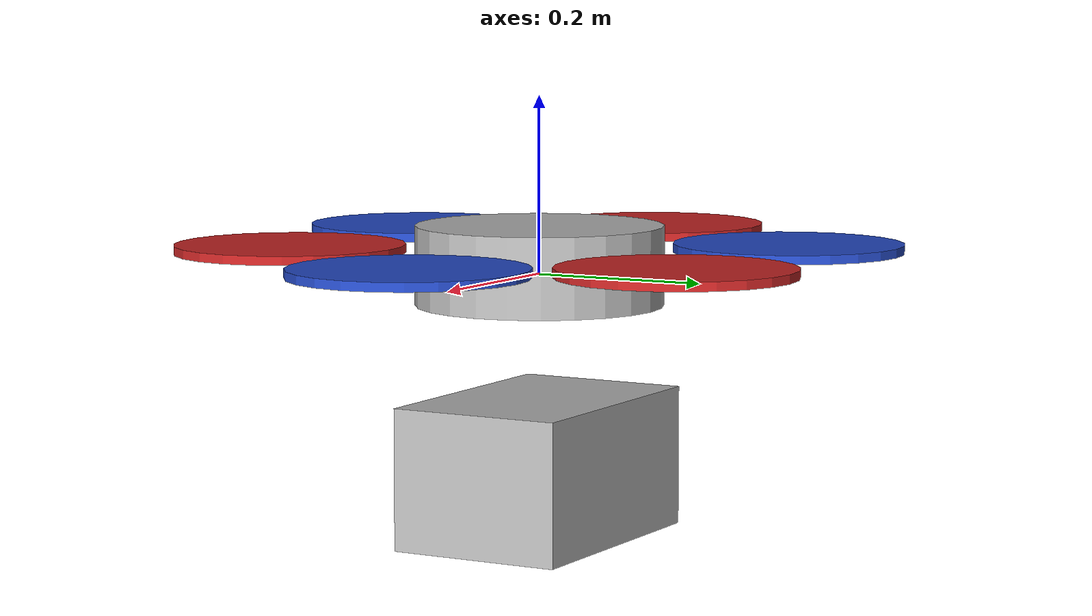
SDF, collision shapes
<sdf version='1.6'>
  <model name='wasp'>
    <link name='base_link'>
      <pose frame=''>0 0 0 0 -0 0</pose>
      <inertial>
        <pose frame=''>0.001154 0.000996 -0.066564 0 -0 0</pose>
        <mass>1.4221</mass>
        <inertia>
          <ixx>0.0305898</ixx>
          <ixy>1.33301e-05</ixy>
          <ixz>-0.000132934</ixz>
          <iyy>0.0326214</iyy>
          <iyz>4.8627e-05</iyz>
          <izz>0.00514132</izz>
        </inertia>
      </inertial>
      <collision name='base_link_fixed_joint_lump__rollcage_collision'>
        <pose frame=''>0 0 0.01 0 -0 0</pose>
        <geometry>
          <cylinder>
            <length>0.09</length>
            <radius>0.14</radius>
          </cylinder>
        </geometry>
      </collision>
      <collision name='base_link_fixed_joint_lump__lander_collision_1'>
        <pose frame=''>0 0 -0.22 0 -0 0</pose>
        <geometry>
          <box>
            <size>0.3 0.2 0.16</size>
          </box>
        </geometry>
      </collision>
      <visual name='base_link_visual'>
        <pose frame=''>0 0 0 0 -0 0</pose>
        <geometry>
          <mesh>
            <scale>1 1 1</scale>
            <uri>model://wasp_gazebo/meshes/WASP_CORE.dae</uri>
          </mesh>
        </geometry>
        <material>
          <script>
            <uri>__default__</uri>
            <name>__default__</name>
          </script>
        </material>
      </visual>
      <visual name='base_link_visual_1'>
        <pose frame=''>0 0 0 0 -0 0</pose>
        <geometry>
          <mesh>
            <scale>1 1 1</scale>
            <uri>model://wasp_gazebo/meshes/WASP_TOP.dae</uri>
          </mesh>
        </geometry>
        <material>
          <script>
            <uri>__default__</uri>
            <name>__default__</name>
          </script>
        </material>
      </visual>
      <visual name='base_link_visual_2'>
        <pose frame=''>0 0 -0.002 0 -0 0</pose>
        <geometry>
          <mesh>
            <scale>1 1 1</scale>
            <uri>model://wasp_gazebo/meshes/WASP_CAGE.dae</uri>
          </mesh>
        </geometry>
        <material>
          <script>
            <uri>__default__</uri>
            <name>__default__</name>
          </script>
        </material>
      </visual>
      <visual name='base_link_visual_3'>
        <pose frame=''>0 0 -0.14 0 -0 0</pose>
        <geometry>
          <mesh>
            <scale>1 1 1</scale>
            <uri>model://wasp_gazebo/meshes/WASP_EXTRUDER_MOUNT.dae</uri>
          </mesh>
        </geometry>
        <material>
          <script>
            <uri>__default__</uri>
            <name>__default__</name>
          </script>
        </material>
      </visual>
      <visual name='base_link_fixed_joint_lump__arm_0_visual_4'>
        <pose frame=''>-0.075 0 -0.0062 0 -0 -1.5708</pose>
        <geometry>
          <mesh>
            <scale>1 1 1</scale>
            <uri>model://wasp_gazebo/meshes/WASP_ARM.dae</uri>
          </mesh>
        </geometry>
      </visual>
      <visual name='base_link_fixed_joint_lump__motor_0_visual_5'>
        <pose frame=''>-0.2794 0 -0.0062 0 -0 0</pose>
        <geometry>
          <mesh>
            <scale>1 1 1</scale>
            <uri>model://wasp_gazebo/meshes/WASP_MOTOR.dae</uri>
          </mesh>
        </geometry>
      </visual>
      <visual name='base_link_fixed_joint_lump__arm_1_visual_6'>
        <pose frame=''>0.075 0 -0.0062 0 -0 1.5708</pose>
        <geometry>
          <mesh>
            <scale>1 1 1</scale>
            <uri>model://wasp_gazebo/meshes/WASP_ARM.dae</uri>
          </mesh>
        </geometry>
      </visual>
      <visual name='base_link_fixed_joint_lump__motor_1_visual_7'>
        <pose frame=''>0.2794 0 -0.0062 0 -0 0</pose>
        <geometry>
          <mesh>
            <scale>1 1 1</scale>
            <uri>model://wasp_gazebo/meshes/WASP_MOTOR.dae</uri>
          </mesh>
        </geometry>
      </visual>
      <visual name='base_link_fixed_joint_lump__arm_2_visual_8'>
        <pose frame=''>0.0375 -0.064952 -0.0062 0 -0 0.523599</pose>
        <geometry>
          <mesh>
            <scale>1 1 1</scale>
            <uri>model://wasp_gazebo/meshes/WASP_ARM.dae</uri>
          </mesh>
        </geometry>
      </visual>
      <visual name='base_link_fixed_joint_lump__motor_2_visual_9'>
        <pose frame=''>0.1397 -0.241967 -0.0062 0 -0 0</pose>
        <geometry>
          <mesh>
            <scale>1 1 1</scale>
            <uri>model://wasp_gazebo/meshes/WASP_MOTOR.dae</uri>
          </mesh>
        </geometry>
      </visual>
      <visual name='base_link_fixed_joint_lump__arm_3_visual_10'>
        <pose frame=''>-0.0375 0.064952 -0.0062 0 -0 -2.61799</pose>
        <geometry>
          <mesh>
            <scale>1 1 1</scale>
            <uri>model://wasp_gazebo/meshes/WASP_ARM.dae</uri>
          </mesh>
        </geometry>
      </visual>
      <visual name='base_link_fixed_joint_lump__motor_3_visual_11'>
        <pose frame=''>-0.1397 0.241967 -0.0062 0 -0 0</pose>
        <geometry>
          <mesh>
            <scale>1 1 1</scale>
            <uri>model://wasp_gazebo/meshes/WASP_MOTOR.dae</uri>
          </mesh>
        </geometry>
      </visual>
      <visual name='base_link_fixed_joint_lump__arm_4_visual_12'>
        <pose frame=''>-0.0375 -0.064952 -0.0062 0 -0 -0.523599</pose>
        <geometry>
          <mesh>
            <scale>1 1 1</scale>
            <uri>model://wasp_gazebo/meshes/WASP_ARM.dae</uri>
          </mesh>
        </geometry>
      </visual>
      <visual name='base_link_fixed_joint_lump__motor_4_visual_13'>
        <pose frame=''>-0.1397 -0.241967 -0.0062 0 -0 0</pose>
        <geometry>
          <mesh>
            <scale>1 1 1</scale>
            <uri>model://wasp_gazebo/meshes/WASP_MOTOR.dae</uri>
          </mesh>
        </geometry>
      </visual>
      <visual name='base_link_fixed_joint_lump__arm_5_visual_14'>
        <pose frame=''>0.0375 0.064952 -0.0062 0 -0 2.61799</pose>
        <geometry>
          <mesh>
            <scale>1 1 1</scale>
            <uri>model://wasp_gazebo/meshes/WASP_ARM.dae</uri>
          </mesh>
        </geometry>
      </visual>
      <visual name='base_link_fixed_joint_lump__motor_5_visual_15'>
        <pose frame=''>0.1397 0.241967 -0.0062 0 -0 0</pose>
        <geometry>
          <mesh>
            <scale>1 1 1</scale>
            <uri>model://wasp_gazebo/meshes/WASP_MOTOR.dae</uri>
          </mesh>
        </geometry>
      </visual>
      <visual name='base_link_fixed_joint_lump__leg_0_visual_16'>
        <pose frame=''>0.063755 0.037567 -0.206 0 -0 2.10327</pose>
        <geometry>
          <mesh>
            <scale>1 1 1</scale>
            <uri>model://wasp_gazebo/meshes/WASP_LEG.dae</uri>
          </mesh>
        </geometry>
      </visual>
      <visual name='base_link_fixed_joint_lump__leg_1_visual_17'>
        <pose frame=''>0.063755 -0.037567 -0.206 0 -0 1.03832</pose>
        <geometry>
          <mesh>
            <scale>1 1 1</scale>
            <uri>model://wasp_gazebo/meshes/WASP_LEG.dae</uri>
          </mesh>
        </geometry>
      </visual>
      <visual name='base_link_fixed_joint_lump__leg_2_visual_18'>
        <pose frame=''>-0.063755 -0.037567 -0.206 0 -0 -1.03832</pose>
        <geometry>
          <mesh>
            <scale>1 1 1</scale>
            <uri>model://wasp_gazebo/meshes/WASP_LEG.dae</uri>
          </mesh>
        </geometry>
      </visual>
      <visual name='base_link_fixed_joint_lump__leg_3_visual_19'>
        <pose frame=''>-0.063755 0.037567 -0.206 0 -0 -2.10327</pose>
        <geometry>
          <mesh>
            <scale>1 1 1</scale>
            <uri>model://wasp_gazebo/meshes/WASP_LEG.dae</uri>
          </mesh>
        </geometry>
      </visual>
      <visual name='base_link_fixed_joint_lump__cannister_0_visual_20'>
        <pose frame=''>0.08 -0.076 -0.112 -1.5708 0 0</pose>
        <geometry>
          <mesh>
            <scale>1 1 1</scale>
            <uri>model://wasp_gazebo/meshes/WASP_CANNISTER.dae</uri>
          </mesh>
        </geometry>
      </visual>
      <visual name='base_link_fixed_joint_lump__cannister_1_visual_21'>
        <pose frame=''>-0.08 -0.076 -0.112 -1.5708 0 0</pose>
        <geometry>
          <mesh>
            <scale>1 1 1</scale>
            <uri>model://wasp_gazebo/meshes/WASP_CANNISTER.dae</uri>
          </mesh>
        </geometry>
      </visual>
      <visual name='base_link_fixed_joint_lump__nozzle_link_visual_22'>
        <pose frame=''>-0.059 0.023 -0.286 0 -0 1.5708</pose>
        <geometry>
          <mesh>
            <scale>1 1 1</scale>
            <uri>model://wasp_gazebo/meshes/WASP_NOZZLE.dae</uri>
          </mesh>
        </geometry>
        <pose frame=''>0 0 -0.05 0 -0 0</pose>
        <geometry>
          <sphere>
            <radius>0.01</radius>
          </sphere>
        </geometry>
        <material>
          <script>
            <name>Gazebo/White</name>
            <uri>file://media/materials/scripts/gazebo.material</uri>
          </script>
        </material>
      </visual>
      <velocity_decay/>
      <self_collide>0</self_collide>
      <gravity>1</gravity>
      <velocity_decay/>
    </link>
    <link name='rotor_0'>
      <pose frame=''>-0.2794 0 0.029 0 -0 0</pose>
      <inertial>
        <pose frame=''>0 0 0 0 -0 0</pose>
        <mass>0.025</mass>
        <inertia>
          <ixx>9.75e-06</ixx>
          <ixy>0</ixy>
          <ixz>0</ixz>
          <iyy>0.0001667</iyy>
          <iyz>0</iyz>
          <izz>0.0001667</izz>
        </inertia>
      </inertial>
      <collision name='rotor_0_collision'>
        <pose frame=''>0 0 0 0 -0 0</pose>
        <geometry>
          <cylinder>
            <length>0.01</length>
            <radius>0.13</radius>
          </cylinder>
        </geometry>
        <surface>
          <contact>
            <ode/>
          </contact>
          <friction>
            <ode/>
          </friction>
        </surface>
      </collision>
      <visual name='rotor_0_visual'>
        <pose frame=''>0 0 0 0 -0 0</pose>
        <geometry>
          <mesh>
            <scale>1 1 1</scale>
            <uri>model://wasp_gazebo/meshes/WASP_PROP_CCW.dae</uri>
          </mesh>
        </geometry>
        <material>
          <script>
            <name>Gazebo/Red</name>
            <uri>file://media/materials/scripts/gazebo.material</uri>
          </script>
        </material>
      </visual>
      <gravity>1</gravity>
      <velocity_decay/>
    </link>
    <joint name='rotor_0_joint' type='revolute'>
      <child>rotor_0</child>
      <parent>base_link</parent>
      <axis>
        <xyz>0 0 1</xyz>
        <limit>
          <lower>-1e+16</lower>
          <upper>1e+16</upper>
        </limit>
        <dynamics>
          <damping>0.004</damping>
          <friction>0</friction>
          <spring_reference>0</spring_reference>
          <spring_stiffness>0</spring_stiffness>
        </dynamics>
        <use_parent_model_frame>0</use_parent_model_frame>
      </axis>
    </joint>
    <link name='rotor_1'>
      <pose frame=''>0.2794 0 0.029 0 -0 0</pose>
      <inertial>
        <pose frame=''>0 0 0 0 -0 0</pose>
        <mass>0.025</mass>
        <inertia>
          <ixx>9.75e-06</ixx>
          <ixy>0</ixy>
          <ixz>0</ixz>
          <iyy>0.0001667</iyy>
          <iyz>0</iyz>
          <izz>0.0001667</izz>
        </inertia>
      </inertial>
      <collision name='rotor_1_collision'>
        <pose frame=''>0 0 0 0 -0 0</pose>
        <geometry>
          <cylinder>
            <length>0.01</length>
            <radius>0.13</radius>
          </cylinder>
        </geometry>
        <surface>
          <contact>
            <ode/>
          </contact>
          <friction>
            <ode/>
          </friction>
        </surface>
      </collision>
      <visual name='rotor_1_visual'>
        <pose frame=''>0 0 0 0 -0 0</pose>
        <geometry>
          <mesh>
            <scale>1 1 1</scale>
            <uri>model://wasp_gazebo/meshes/WASP_PROP_CW.dae</uri>
          </mesh>
        </geometry>
        <material>
          <script>
            <name>Gazebo/Blue</name>
            <uri>file://media/materials/scripts/gazebo.material</uri>
          </script>
        </material>
      </visual>
      <gravity>1</gravity>
      <velocity_decay/>
    </link>
    <joint name='rotor_1_joint' type='revolute'>
      <child>rotor_1</child>
      <parent>base_link</parent>
      <axis>
        <xyz>0 0 1</xyz>
        <limit>
          <lower>-1e+16</lower>
          <upper>1e+16</upper>
        </limit>
        <dynamics>
          <damping>0.004</damping>
          <friction>0</friction>
          <spring_reference>0</spring_reference>
          <spring_stiffness>0</spring_stiffness>
        </dynamics>
        <use_parent_model_frame>0</use_parent_model_frame>
      </axis>
    </joint>
    <link name='rotor_2'>
      <pose frame=''>0.1397 -0.241967 0.029 0 -0 0</pose>
      <inertial>
        <pose frame=''>0 0 0 0 -0 0</pose>
        <mass>0.025</mass>
        <inertia>
          <ixx>9.75e-06</ixx>
          <ixy>0</ixy>
          <ixz>0</ixz>
          <iyy>0.0001667</iyy>
          <iyz>0</iyz>
          <izz>0.0001667</izz>
        </inertia>
      </inertial>
      <collision name='rotor_2_collision'>
        <pose frame=''>0 0 0 0 -0 0</pose>
        <geometry>
          <cylinder>
            <length>0.01</length>
            <radius>0.13</radius>
          </cylinder>
        </geometry>
        <surface>
          <contact>
            <ode/>
          </contact>
          <friction>
            <ode/>
          </friction>
        </surface>
      </collision>
      <visual name='rotor_2_visual'>
        <pose frame=''>0 0 0 0 -0 0</pose>
        <geometry>
          <mesh>
            <scale>1 1 1</scale>
            <uri>model://wasp_gazebo/meshes/WASP_PROP_CCW.dae</uri>
          </mesh>
        </geometry>
        <material>
          <script>
            <name>Gazebo/Red</name>
            <uri>file://media/materials/scripts/gazebo.material</uri>
          </script>
        </material>
      </visual>
      <gravity>1</gravity>
      <velocity_decay/>
    </link>
    <joint name='rotor_2_joint' type='revolute'>
      <child>rotor_2</child>
      <parent>base_link</parent>
      <axis>
        <xyz>0 0 1</xyz>
        <limit>
          <lower>-1e+16</lower>
          <upper>1e+16</upper>
        </limit>
        <dynamics>
          <damping>0.004</damping>
          <friction>0</friction>
          <spring_reference>0</spring_reference>
          <spring_stiffness>0</spring_stiffness>
        </dynamics>
        <use_parent_model_frame>0</use_parent_model_frame>
      </axis>
    </joint>
    <link name='rotor_3'>
      <pose frame=''>-0.1397 0.241967 0.029 0 -0 0</pose>
      <inertial>
        <pose frame=''>0 0 0 0 -0 0</pose>
        <mass>0.025</mass>
        <inertia>
          <ixx>9.75e-06</ixx>
          <ixy>0</ixy>
          <ixz>0</ixz>
          <iyy>0.0001667</iyy>
          <iyz>0</iyz>
          <izz>0.0001667</izz>
        </inertia>
      </inertial>
      <collision name='rotor_3_collision'>
        <pose frame=''>0 0 0 0 -0 0</pose>
        <geometry>
          <cylinder>
            <length>0.01</length>
            <radius>0.13</radius>
          </cylinder>
        </geometry>
        <surface>
          <contact>
            <ode/>
          </contact>
          <friction>
            <ode/>
          </friction>
        </surface>
      </collision>
      <visual name='rotor_3_visual'>
        <pose frame=''>0 0 0 0 -0 0</pose>
        <geometry>
          <mesh>
            <scale>1 1 1</scale>
            <uri>model://wasp_gazebo/meshes/WASP_PROP_CW.dae</uri>
          </mesh>
        </geometry>
        <material>
          <script>
            <name>Gazebo/Blue</name>
            <uri>file://media/materials/scripts/gazebo.material</uri>
          </script>
        </material>
      </visual>
      <gravity>1</gravity>
      <velocity_decay/>
    </link>
    <joint name='rotor_3_joint' type='revolute'>
      <child>rotor_3</child>
      <parent>base_link</parent>
      <axis>
        <xyz>0 0 1</xyz>
        <limit>
          <lower>-1e+16</lower>
          <upper>1e+16</upper>
        </limit>
        <dynamics>
          <damping>0.004</damping>
          <friction>0</friction>
          <spring_reference>0</spring_reference>
          <spring_stiffness>0</spring_stiffness>
        </dynamics>
        <use_parent_model_frame>0</use_parent_model_frame>
      </axis>
    </joint>
    <link name='rotor_4'>
      <pose frame=''>-0.1397 -0.241967 0.029 0 -0 0</pose>
      <inertial>
        <pose frame=''>0 0 0 0 -0 0</pose>
        <mass>0.025</mass>
        <inertia>
          <ixx>9.75e-06</ixx>
          <ixy>0</ixy>
          <ixz>0</ixz>
          <iyy>0.0001667</iyy>
          <iyz>0</iyz>
          <izz>0.0001667</izz>
        </inertia>
      </inertial>
      <collision name='rotor_4_collision'>
        <pose frame=''>0 0 0 0 -0 0</pose>
        <geometry>
          <cylinder>
            <length>0.01</length>
            <radius>0.13</radius>
          </cylinder>
        </geometry>
        <surface>
          <contact>
            <ode/>
          </contact>
          <friction>
            <ode/>
          </friction>
        </surface>
      </collision>
      <visual name='rotor_4_visual'>
        <pose frame=''>0 0 0 0 -0 0</pose>
        <geometry>
          <mesh>
            <scale>1 1 1</scale>
            <uri>model://wasp_gazebo/meshes/WASP_PROP_CW.dae</uri>
          </mesh>
        </geometry>
        <material>
          <script>
            <name>Gazebo/Blue</name>
            <uri>file://media/materials/scripts/gazebo.material</uri>
          </script>
        </material>
      </visual>
      <gravity>1</gravity>
      <velocity_decay/>
    </link>
    <joint name='rotor_4_joint' type='revolute'>
      <child>rotor_4</child>
      <parent>base_link</parent>
      <axis>
        <xyz>0 0 1</xyz>
        <limit>
          <lower>-1e+16</lower>
          <upper>1e+16</upper>
        </limit>
        <dynamics>
          <damping>0.004</damping>
          <friction>0</friction>
          <spring_reference>0</spring_reference>
          <spring_stiffness>0</spring_stiffness>
        </dynamics>
        <use_parent_model_frame>0</use_parent_model_frame>
      </axis>
    </joint>
    <link name='rotor_5'>
      <pose frame=''>0.1397 0.241967 0.029 0 -0 0</pose>
      <inertial>
        <pose frame=''>0 0 0 0 -0 0</pose>
        <mass>0.025</mass>
        <inertia>
          <ixx>9.75e-06</ixx>
          <ixy>0</ixy>
          <ixz>0</ixz>
          <iyy>0.0001667</iyy>
          <iyz>0</iyz>
          <izz>0.0001667</izz>
        </inertia>
      </inertial>
      <collision name='rotor_5_collision'>
        <pose frame=''>0 0 0 0 -0 0</pose>
        <geometry>
          <cylinder>
            <length>0.01</length>
            <radius>0.13</radius>
          </cylinder>
        </geometry>
        <surface>
          <contact>
            <ode/>
          </contact>
          <friction>
            <ode/>
          </friction>
        </surface>
      </collision>
      <visual name='rotor_5_visual'>
        <pose frame=''>0 0 0 0 -0 0</pose>
        <geometry>
          <mesh>
            <scale>1 1 1</scale>
            <uri>model://wasp_gazebo/meshes/WASP_PROP_CCW.dae</uri>
          </mesh>
        </geometry>
        <material>
          <script>
            <name>Gazebo/Red</name>
            <uri>file://media/materials/scripts/gazebo.material</uri>
          </script>
        </material>
      </visual>
      <gravity>1</gravity>
      <velocity_decay/>
    </link>
    <joint name='rotor_5_joint' type='revolute'>
      <child>rotor_5</child>
      <parent>base_link</parent>
      <axis>
        <xyz>0 0 1</xyz>
        <limit>
          <lower>-1e+16</lower>
          <upper>1e+16</upper>
        </limit>
        <dynamics>
          <damping>0.004</damping>
          <friction>0</friction>
          <spring_reference>0</spring_reference>
          <spring_stiffness>0</spring_stiffness>
        </dynamics>
        <use_parent_model_frame>0</use_parent_model_frame>
      </axis>
    </joint>
    <static>0</static>
    <link name='wasp/imu_link'>
      <pose frame=''>0 0 0 0 -0 0</pose>
      <inertial>
        <pose frame=''>0 0 0 0 -0 0</pose>
        <mass>0.015</mass>
        <inertia>
          <ixx>1e-05</ixx>
          <ixy>0</ixy>
          <ixz>0</ixz>
          <iyy>1e-05</iyy>
          <iyz>0</iyz>
          <izz>1e-05</izz>
        </inertia>
      </inertial>
    </link>
    <joint name='wasp/imu_joint' type='revolute'>
      <child>wasp/imu_link</child>
      <parent>base_link</parent>
      <axis>
        <xyz>1 0 0</xyz>
        <limit>
          <lower>0</lower>
          <upper>0</upper>
          <effort>0</effort>
          <velocity>0</velocity>
        </limit>
        <dynamics>
          <spring_reference>0</spring_reference>
          <spring_stiffness>0</spring_stiffness>
        </dynamics>
        <use_parent_model_frame>1</use_parent_model_frame>
      </axis>
    </joint>
    <link name='gps::link'>
      <pose frame=''>0 0 0 0 -0 0</pose>
      <inertial>
        <pose frame=''>0 0 0 0 -0 0</pose>
        <mass>0.015</mass>
        <inertia>
          <ixx>1e-05</ixx>
          <ixy>0</ixy>
          <ixz>0</ixz>
          <iyy>1e-05</iyy>
          <iyz>0</iyz>
          <izz>1e-05</izz>
        </inertia>
      </inertial>
      <visual name='visual'>
        <geometry>
          <cylinder>
            <radius>0.01</radius>
            <length>0.002</length>
          </cylinder>
        </geometry>
        <material>
          <script>
            <name>Gazebo/Black</name>
            <uri>__default__</uri>
          </script>
        </material>
      </visual>
      <sensor name='gps' type='gps'>
        <pose frame=''>0 0 0 0 -0 0</pose>
        <update_rate>5</update_rate>
        <always_on>1</always_on>
        <visualize>0</visualize>
        <plugin name='gps_plugin' filename='libgazebo_gps_plugin.so'>
          <robotNamespace/>
          <gpsNoise>1</gpsNoise>
          <gpsXYRandomWalk>2.0</gpsXYRandomWalk>
          <gpsZRandomWalk>4.0</gpsZRandomWalk>
          <gpsXYNoiseDensity>2.0e-4</gpsXYNoiseDensity>
          <gpsZNoiseDensity>4.0e-4</gpsZNoiseDensity>
          <gpsVXYNoiseDensity>0.2</gpsVXYNoiseDensity>
          <gpsVZNoiseDensity>0.4</gpsVZNoiseDensity>
        </plugin>
      </sensor>
    </link>
    <joint name='gps_joint' type='fixed'>
      <child>gps::link</child>
      <parent>base_link</parent>
    </joint>
    <plugin name='rosbag' filename='libgazebo_multirotor_base_plugin.so'>
      <robotNamespace/>
      <linkName>base_link</linkName>
      <rotorVelocitySlowdownSim>10</rotorVelocitySlowdownSim>
    </plugin>
    <plugin name='rotor_plugin_0' filename='libgazebo_motor_model.so'>
      <robotNamespace/>
      <jointName>rotor_0_joint</jointName>
      <linkName>rotor_0</linkName>
      <turningDirection>ccw</turningDirection>
      <timeConstantUp>0.0125</timeConstantUp>
      <timeConstantDown>0.025</timeConstantDown>
      <maxRotVelocity>1500</maxRotVelocity>
      <motorConstant>8.54858e-06</motorConstant>
      <momentConstant>0.06</momentConstant>
      <commandSubTopic>/gazebo/command/motor_speed</commandSubTopic>
      <motorNumber>5</motorNumber>
      <rotorDragCoefficient>0.000806428</rotorDragCoefficient>
      <rollingMomentCoefficient>1e-06</rollingMomentCoefficient>
      <motorSpeedPubTopic>/motor_speed/5</motorSpeedPubTopic>
      <rotorVelocitySlowdownSim>10</rotorVelocitySlowdownSim>
    </plugin>
    <plugin name='rotor_plugin_1' filename='libgazebo_motor_model.so'>
      <robotNamespace/>
      <jointName>rotor_1_joint</jointName>
      <linkName>rotor_1</linkName>
      <turningDirection>cw</turningDirection>
      <timeConstantUp>0.0125</timeConstantUp>
      <timeConstantDown>0.025</timeConstantDown>
      <maxRotVelocity>1500</maxRotVelocity>
      <motorConstant>8.54858e-06</motorConstant>
      <momentConstant>0.06</momentConstant>
      <commandSubTopic>/gazebo/command/motor_speed</commandSubTopic>
      <motorNumber>4</motorNumber>
      <rotorDragCoefficient>0.000806428</rotorDragCoefficient>
      <rollingMomentCoefficient>1e-06</rollingMomentCoefficient>
      <motorSpeedPubTopic>/motor_speed/4</motorSpeedPubTopic>
      <rotorVelocitySlowdownSim>10</rotorVelocitySlowdownSim>
    </plugin>
    <plugin name='rotor_plugin_2' filename='libgazebo_motor_model.so'>
      <robotNamespace/>
      <jointName>rotor_2_joint</jointName>
      <linkName>rotor_2</linkName>
      <turningDirection>ccw</turningDirection>
      <timeConstantUp>0.0125</timeConstantUp>
      <timeConstantDown>0.025</timeConstantDown>
      <maxRotVelocity>1500</maxRotVelocity>
      <motorConstant>8.54858e-06</motorConstant>
      <momentConstant>0.06</momentConstant>
      <commandSubTopic>/gazebo/command/motor_speed</commandSubTopic>
      <motorNumber>3</motorNumber>
      <rotorDragCoefficient>0.000806428</rotorDragCoefficient>
      <rollingMomentCoefficient>1e-06</rollingMomentCoefficient>
      <motorSpeedPubTopic>/motor_speed/3</motorSpeedPubTopic>
      <rotorVelocitySlowdownSim>10</rotorVelocitySlowdownSim>
    </plugin>
    <plugin name='rotor_plugin_3' filename='libgazebo_motor_model.so'>
      <robotNamespace/>
      <jointName>rotor_3_joint</jointName>
      <linkName>rotor_3</linkName>
      <turningDirection>cw</turningDirection>
      <timeConstantUp>0.0125</timeConstantUp>
      <timeConstantDown>0.025</timeConstantDown>
      <maxRotVelocity>1500</maxRotVelocity>
      <motorConstant>8.54858e-06</motorConstant>
      <momentConstant>0.06</momentConstant>
      <commandSubTopic>/gazebo/command/motor_speed</commandSubTopic>
      <motorNumber>2</motorNumber>
      <rotorDragCoefficient>0.000806428</rotorDragCoefficient>
      <rollingMomentCoefficient>1e-06</rollingMomentCoefficient>
      <motorSpeedPubTopic>/motor_speed/2</motorSpeedPubTopic>
      <rotorVelocitySlowdownSim>10</rotorVelocitySlowdownSim>
    </plugin>
    <plugin name='rotor_plugin_4' filename='libgazebo_motor_model.so'>
      <robotNamespace/>
      <jointName>rotor_4_joint</jointName>
      <linkName>rotor_4</linkName>
      <turningDirection>cw</turningDirection>
      <timeConstantUp>0.0125</timeConstantUp>
      <timeConstantDown>0.025</timeConstantDown>
      <maxRotVelocity>1500</maxRotVelocity>
      <motorConstant>8.54858e-06</motorConstant>
      <momentConstant>0.06</momentConstant>
      <commandSubTopic>/gazebo/command/motor_speed</commandSubTopic>
      <motorNumber>1</motorNumber>
      <rotorDragCoefficient>0.000806428</rotorDragCoefficient>
      <rollingMomentCoefficient>1e-06</rollingMomentCoefficient>
      <motorSpeedPubTopic>/motor_speed/1</motorSpeedPubTopic>
      <rotorVelocitySlowdownSim>10</rotorVelocitySlowdownSim>
    </plugin>
    <plugin name='rotor_plugin_5' filename='libgazebo_motor_model.so'>
      <robotNamespace/>
      <jointName>rotor_5_joint</jointName>
      <linkName>rotor_5</linkName>
      <turningDirection>ccw</turningDirection>
      <timeConstantUp>0.0125</timeConstantUp>
      <timeConstantDown>0.025</timeConstantDown>
      <maxRotVelocity>1500</maxRotVelocity>
      <motorConstant>8.54858e-06</motorConstant>
      <momentConstant>0.06</momentConstant>
      <commandSubTopic>/gazebo/command/motor_speed</commandSubTopic>
      <motorNumber>0</motorNumber>
      <rotorDragCoefficient>0.000806428</rotorDragCoefficient>
      <rollingMomentCoefficient>1e-06</rollingMomentCoefficient>
      <motorSpeedPubTopic>/motor_speed/0</motorSpeedPubTopic>
      <rotorVelocitySlowdownSim>10</rotorVelocitySlowdownSim>
    </plugin>
    <plugin name='groundtruth_plugin' filename='libgazebo_groundtruth_plugin.so'>
      <robotNamespace/>
    </plugin>
    <plugin name='magnetometer_plugin' filename='libgazebo_magnetometer_plugin.so'>
      <robotNamespace/>
      <pubRate>100</pubRate>
      <noiseDensity>0.0004</noiseDensity>
      <randomWalk>6.4e-06</randomWalk>
      <biasCorrelationTime>600</biasCorrelationTime>
      <magTopic>/mag</magTopic>
    </plugin>
    <plugin name='barometer_plugin' filename='libgazebo_barometer_plugin.so'>
      <robotNamespace/>
      <pubRate>50</pubRate>
      <baroTopic>/baro</baroTopic>
    </plugin>
    <plugin name='mavlink_interface' filename='libgazebo_mavlink_interface.so'>
      <robotNamespace/>
      <imuSubTopic>/imu</imuSubTopic>
      <magSubTopic>/mag</magSubTopic>
      <baroSubTopic>/baro</baroSubTopic>
      <mavlink_addr>INADDR_ANY</mavlink_addr>
      <mavlink_tcp_port>4560</mavlink_tcp_port>
      <mavlink_udp_port>14560</mavlink_udp_port>
      <serialEnabled>0</serialEnabled>
      <serialDevice>/dev/ttyACM0</serialDevice>
      <baudRate>921600</baudRate>
      <qgc_addr>INADDR_ANY</qgc_addr>
      <qgc_udp_port>14550</qgc_udp_port>
      <sdk_addr>INADDR_ANY</sdk_addr>
      <sdk_udp_port>14540</sdk_udp_port>
      <hil_mode>0</hil_mode>
      <hil_state_level>0</hil_state_level>
      <enable_lockstep>1</enable_lockstep>
      <use_tcp>1</use_tcp>
      <motorSpeedCommandPubTopic>/gazebo/command/motor_speed</motorSpeedCommandPubTopic>
      <control_channels>
        <channel name='rotor0'>
          <input_index>0</input_index>
          <input_offset>0</input_offset>
          <input_scaling>1500</input_scaling>
          <zero_position_disarmed>0</zero_position_disarmed>
          <zero_position_armed>100</zero_position_armed>
          <joint_control_type>velocity</joint_control_type>
        </channel>
        <channel name='rotor1'>
          <input_index>1</input_index>
          <input_offset>0</input_offset>
          <input_scaling>1500</input_scaling>
          <zero_position_disarmed>0</zero_position_disarmed>
          <zero_position_armed>100</zero_position_armed>
          <joint_control_type>velocity</joint_control_type>
        </channel>
        <channel name='rotor2'>
          <input_index>2</input_index>
          <input_offset>0</input_offset>
          <input_scaling>1500</input_scaling>
          <zero_position_disarmed>0</zero_position_disarmed>
          <zero_position_armed>100</zero_position_armed>
          <joint_control_type>velocity</joint_control_type>
        </channel>
        <channel name='rotor3'>
          <input_index>3</input_index>
          <input_offset>0</input_offset>
          <input_scaling>1500</input_scaling>
          <zero_position_disarmed>0</zero_position_disarmed>
          <zero_position_armed>100</zero_position_armed>
          <joint_control_type>velocity</joint_control_type>
        </channel>
        <channel name='rotor4'>
          <input_index>4</input_index>
          <input_offset>0</input_offset>
          <input_scaling>1500</input_scaling>
          <zero_position_disarmed>0</zero_position_disarmed>
          <zero_position_armed>100</zero_position_armed>
          <joint_control_type>velocity</joint_control_type>
        </channel>
        <channel name='rotor5'>
          <input_index>5</input_index>
          <input_offset>0</input_offset>
          <input_scaling>1500</input_scaling>
          <zero_position_disarmed>0</zero_position_disarmed>
          <zero_position_armed>100</zero_position_armed>
          <joint_control_type>velocity</joint_control_type>
        </channel>
      </control_channels>
    </plugin>
    <plugin name='gazebo_imu_plugin' filename='libgazebo_imu_plugin.so'>
      <robotNamespace/>
      <linkName>wasp/imu_link</linkName>
      <imuTopic>/imu</imuTopic>
      <gyroscopeNoiseDensity>0.0003394</gyroscopeNoiseDensity>
      <gyroscopeRandomWalk>3.8785e-05</gyroscopeRandomWalk>
      <gyroscopeBiasCorrelationTime>1000.0</gyroscopeBiasCorrelationTime>
      <gyroscopeTurnOnBiasSigma>0.0087</gyroscopeTurnOnBiasSigma>
      <accelerometerNoiseDensity>0.004</accelerometerNoiseDensity>
      <accelerometerRandomWalk>0.006</accelerometerRandomWalk>
      <accelerometerBiasCorrelationTime>300.0</accelerometerBiasCorrelationTime>
      <accelerometerTurnOnBiasSigma>0.196</accelerometerTurnOnBiasSigma>
    </plugin>
  </model>
</sdf>
